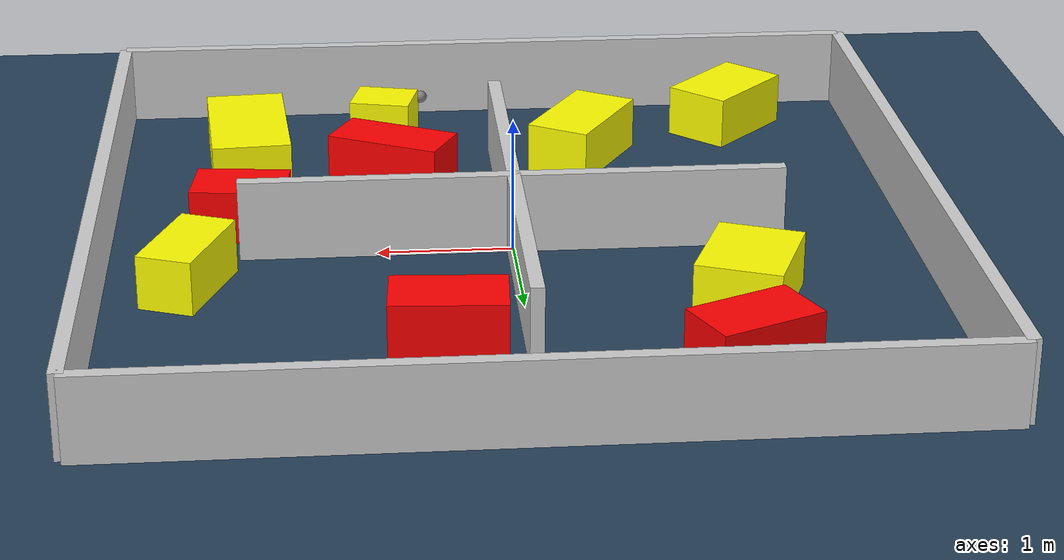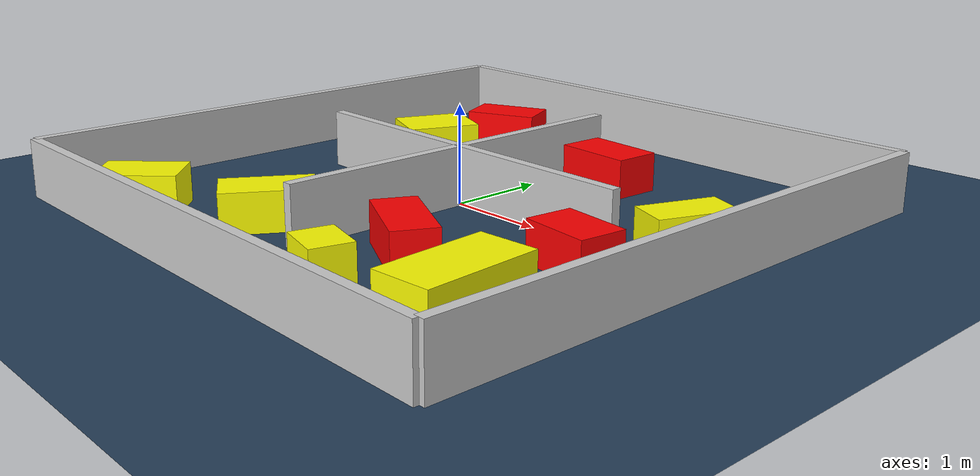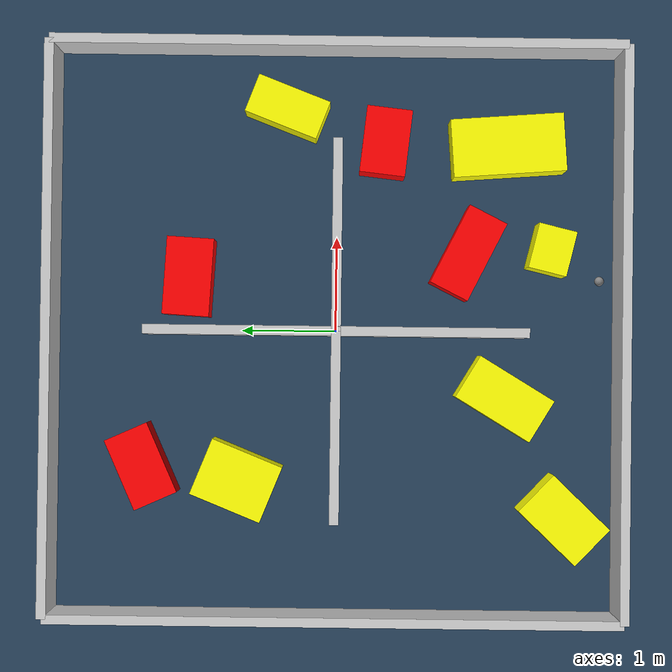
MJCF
<?xml version="1.0" ?>
<mujoco model="generated_environment">
  <option timestep="0.01" integrator="RK4" cone="elliptic"/>
  <default>
    <geom density="1"/>
  </default>
  <asset>
    <texture builtin="gradient" height="3072" rgb1="0.3 0.5 0.7" rgb2="0 0 0" type="skybox" width="512"/>
    <texture builtin="checker" height="300" mark="edge" markrgb="0.8 0.8 0.8" name="groundplane" rgb1="0.2 0.3 0.4" rgb2="0.1 0.2 0.3" type="2d" width="300"/>
    <material name="groundplane" reflectance="0.2" texrepeat="5 5" texture="groundplane" texuniform="true"/>
    <material name="robot" rgba="0.0 1.0 0.0 1"/>
  </asset>
  <worldbody>
    <light dir="0 0 -1" directional="true" pos="0 0 1.5"/>
    <geom condim="4" friction="1.0 0.005 0.001" material="groundplane" name="floor" size="0 0 0.05" type="plane"/>
    <body name="walls">
      <geom name="wall_1" condim="4" pos="-3.0 0.0 0.3" rgba="0.800000011920929 0.800000011920929 0.800000011920929 1.0" size="0.05 3.0 0.3" type="box"/>
      <geom name="wall_2" condim="4" pos="3.0 0.0 0.3" rgba="0.800000011920929 0.800000011920929 0.800000011920929 1.0" size="0.05 3.0 0.3" type="box"/>
      <geom name="wall_3" condim="4" pos="0.0 -3.0 0.3" rgba="0.800000011920929 0.800000011920929 0.800000011920929 1.0" size="3.0 0.05 0.3" type="box"/>
      <geom name="wall_4" condim="4" pos="0.0 3.0 0.3" rgba="0.800000011920929 0.800000011920929 0.800000011920929 1.0" size="3.0 0.05 0.3" type="box"/>
      <geom name="wall_5" condim="4" pos="1.0 0.0 0.3" rgba="0.800000011920929 0.800000011920929 0.800000011920929 1.0" size="1.0 0.05 0.3" type="box"/>
      <geom name="wall_6" condim="4" pos="-1.0 0.0 0.3" rgba="0.800000011920929 0.800000011920929 0.800000011920929 1.0" size="1.0 0.05 0.3" type="box"/>
      <geom name="wall_7" condim="4" pos="0.0 -1.0 0.3" rgba="0.800000011920929 0.800000011920929 0.800000011920929 1.0" size="0.05 1.0 0.3" type="box"/>
      <geom name="wall_8" condim="4" pos="0.0 1.0 0.3" rgba="0.800000011920929 0.800000011920929 0.800000011920929 1.0" size="0.05 1.0 0.3" type="box"/>
    </body>
    <body name="robot">
      <joint name="joint_x" type="slide" pos="0 0 0" axis="1 0 0"/>
      <joint name="joint_y" type="slide" pos="0 0 0" axis="0 1 0"/>
      <geom name="robot" type="sphere" pos="0.5612752725389334 -2.7738975225518843 0.2" size="0.05" mass="5." friction="1.0 0.005 0.0001" condim="4"/>
      <site name="sensor_ball"/>
    </body>
    <body name="obstacle_1_static">
      <geom name="obstacle_1_static" condim="4" pos="1.9972688945792942 -0.5015733403311682 0.2" euler="0 0 83.62324873894786" friction="1.0 0.005 0.001" rgba="1 0 0 1" size="0.23994935280249902 0.3496934790590226 0.2" type="box"/>
    </body>
    <body name="obstacle_2_movable">
      <geom name="obstacle_2_movable" condim="4" pos="-1.570492372227784 1.026723080682669 0.2" euler="0 0 248.06555740609562" friction="1.0 0.005 0.001" rgba="1 1 0 1" size="0.3948109179117556 0.311820549809022 0.2" type="box" mass="0.1"/>
      <joint type="free"/>
    </body>
    <body name="obstacle_3_movable">
      <geom name="obstacle_3_movable" condim="4" pos="-1.9467536603608342 -2.400321548519436 0.2" euler="0 0 136.3744453786829" friction="1.0 0.005 0.001" rgba="1 1 0 1" size="0.26338631124707296 0.4091961322816611 0.2" type="box" mass="0.1"/>
      <joint type="free"/>
    </body>
    <body name="obstacle_4_movable">
      <geom name="obstacle_4_movable" condim="4" pos="1.9702082093877422 -1.785307758959524 0.2" euler="0 0 274.1864839298213" friction="1.0 0.005 0.001" rgba="1 1 0 1" size="0.5925758992287038 0.3037644119074142 0.2" type="box" mass="0.1"/>
      <joint type="free"/>
    </body>
    <body name="obstacle_5_static">
      <geom name="obstacle_5_static" condim="4" pos="0.5573464424314905 1.553958571892319 0.2" euler="0 0 356.69923128800673" friction="1.0 0.005 0.001" rgba="1 0 0 1" size="0.4074110602237768 0.24589771734336036 0.2" type="box"/>
    </body>
    <body name="obstacle_6_movable">
      <geom name="obstacle_6_movable" condim="4" pos="2.3476879329911613 0.5329603905732139 0.2" euler="0 0 158.93026280116973" friction="1.0 0.005 0.001" rgba="1 1 0 1" size="0.20754204634169737 0.4002348360142963 0.2" type="box" mass="0.1"/>
      <joint type="free"/>
    </body>
    <body name="obstacle_7_static">
      <geom name="obstacle_7_static" condim="4" pos="-1.433212626231642 2.02300671212142 0.2" euler="0 0 294.1089566016727" friction="1.0 0.005 0.001" rgba="1 0 0 1" size="0.2413926475154573 0.3957317188843612 0.2" type="box"/>
    </body>
    <body name="obstacle_8_static">
      <geom name="obstacle_8_static" condim="4" pos="0.8363525166089207 -1.3775224554906325 0.2" euler="0 0 333.19237089683884" friction="1.0 0.005 0.001" rgba="1 0 0 1" size="0.4535889744583485 0.21951693997807267 0.2" type="box"/>
    </body>
    <body name="obstacle_9_movable">
      <geom name="obstacle_9_movable" condim="4" pos="0.8801092857572264 -2.2570981470168827 0.2" euler="0 0 346.3045534628614" friction="1.0 0.005 0.001" rgba="1 1 0 1" size="0.24036042507967276 0.2041014383828424 0.2" type="box" mass="0.1"/>
      <joint type="free"/>
    </body>
    <body name="obstacle_10_movable">
      <geom name="obstacle_10_movable" condim="4" pos="-0.6868515649161497 -1.7702493972840725 0.2" euler="0 0 328.8635542308032" friction="1.0 0.005 0.001" rgba="1 1 0 1" size="0.2518505655379244 0.45284200847045436 0.2" type="box" mass="0.1"/>
      <joint type="free"/>
    </body>
  </worldbody>
  <actuator>
    <motor name="actuator_x" joint="joint_x" gear="1" ctrlrange="-1 1"/>
    <motor name="actuator_y" joint="joint_y" gear="1" ctrlrange="-1 1"/>
  </actuator>
</mujoco>
